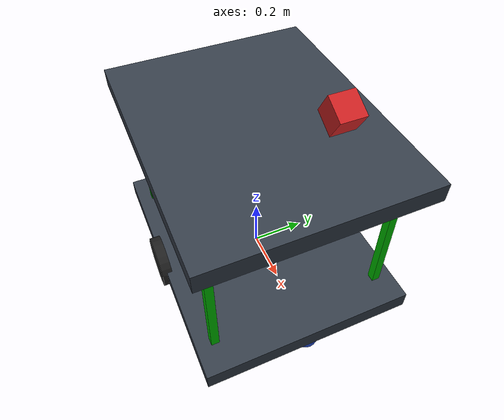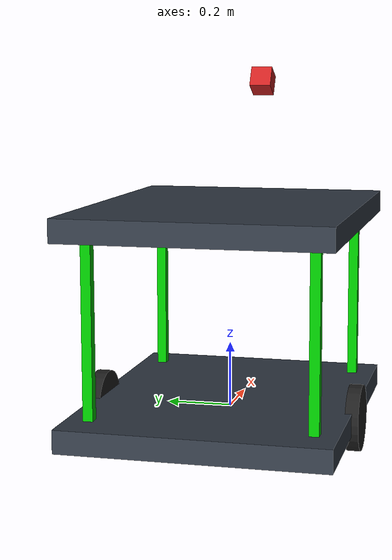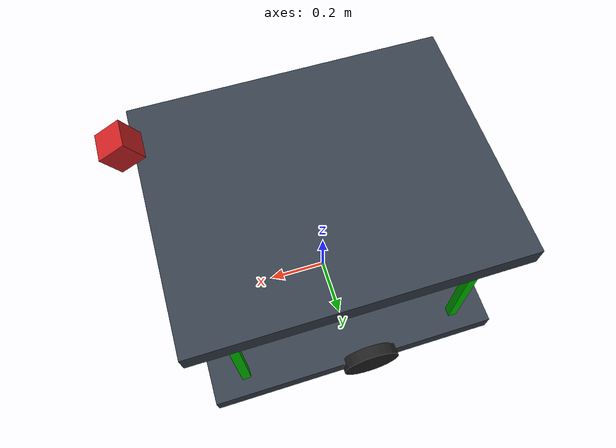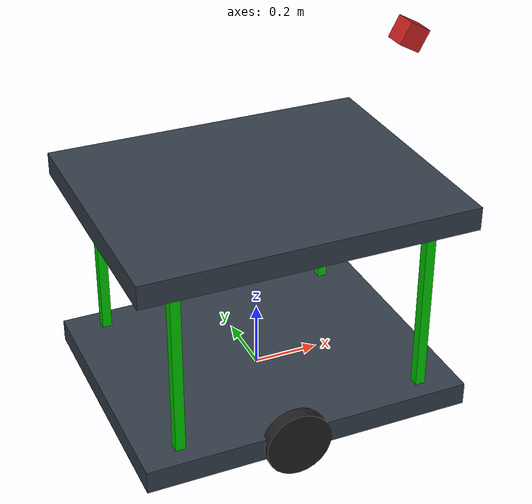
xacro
<?xml version="1.0" ?>

<robot name="m2wr" xmlns:xacro="https://www.ros.org/wiki/xacro" >

  <material name="black">
    <color rgba="0.0 0.0 0.0 1.0"/>
  </material>
  <material name="blue">
    <color rgba="0.203125 0.23828125 0.28515625 1.0"/>
  </material>
  <material name="green">
    <color rgba="0.0 0.8 0.0 1.0"/>
  </material>
  <material name="grey">
    <color rgba="0.2 0.2 0.2 1.0"/>
  </material>
  <material name="orange">
    <color rgba="1.0 0.423529411765 0.0392156862745 1.0"/>
  </material>
  <material name="brown">
    <color rgba="0.870588235294 0.811764705882 0.764705882353 1.0"/>
  </material>
  <material name="red">
    <color rgba="0.80078125 0.12890625 0.1328125 1.0"/>
  </material>
  <material name="white">
    <color rgba="1.0 1.0 1.0 1.0"/>
  </material>

  <gazebo reference="link_chassis">
    <material>Gazebo/Blue</material>
  </gazebo>
  <gazebo reference="link_left_wheel">
    <material>Gazebo/Black</material>
  </gazebo>
  <gazebo reference="link_right_wheel">
    <material>Gazebo/Black</material>
  </gazebo>
  <gazebo reference="link_layer2">
    <material>Gazebo/Blue</material>
  </gazebo>
  <gazebo reference="support_1">
    <material>Gazebo/Green</material>
  </gazebo>
  <gazebo reference="support_2">
    <material>Gazebo/Green</material>
  </gazebo>
    <gazebo reference="support_3">
    <material>Gazebo/Green</material>
  </gazebo>
    <gazebo reference="support_4">
    <material>Gazebo/Green</material>
  </gazebo>

<gazebo>
    <plugin filename="libgazebo_ros_diff_drive.so" name="differential_drive_controller">
      <alwaysOn>true</alwaysOn>
      <updateRate>20</updateRate>
      <leftJoint>joint_left_wheel</leftJoint>
      <rightJoint>joint_right_wheel</rightJoint>
      <wheelSeparation>0.8</wheelSeparation>
      <wheelDiameter>0.2</wheelDiameter>
      <torque>10</torque>
      <commandTopic>cmd_vel</commandTopic>
      <odometryTopic>odom</odometryTopic>
      <odometryFrame>odom</odometryFrame>
      <robotBaseFrame>link_chassis</robotBaseFrame>
    </plugin>
  </gazebo>

  <link name="link_chassis">
    <!-- pose and inertial -->

    <inertial>
      <mass value="5"/>
      <origin rpy="0 0 0" xyz="0.00 0.0 0.0"/>
      <inertia ixx="0.0395416666667" ixy="0" ixz="0" iyy="0.106208333333" iyz="0" izz="0.106208333333"/>
    </inertial>

    <collision name="collision_chassis">
      <geometry>
        <box size="1 0.8 0.07"/>
      </geometry>
    </collision>

    <visual>
      <origin rpy="0 0 0" xyz="0 0 0"/>
      <geometry>
        <box size="1 0.8 0.07"/>
      </geometry>
      <material name="blue"/>
    </visual>

    <!-- caster front -->
    <collision name="caster_front_collision">
      <origin rpy=" 0 0 0" xyz="0.35 0 -0.05"/>
      <geometry>
        <sphere radius="0.05"/>
      </geometry>
      <surface>
        <friction>
          <ode>
            <mu>0</mu>
            <mu2>0</mu2>
            <slip1>1.0</slip1>
            <slip2>1.0</slip2>
          </ode>
        </friction>
      </surface>
    </collision>
    <visual name="caster_front_visual">
      <origin rpy=" 0 0 0" xyz="0.45 0 -0.05"/>
      <geometry>
        <sphere radius="0.05"/>
      </geometry>
    </visual>
  </link>

  <!-- Create wheel right -->

  <link name="link_right_wheel">
    <inertial>
      <mass value="0.2"/>
      <origin rpy="0 0 0" xyz="0 0 0"/>
      <inertia ixx="0.00052666666" ixy="0" ixz="0" iyy="0.00052666666" iyz="0" izz="0.001"/>
    </inertial>

    <collision name="link_right_wheel_collision">
      <origin rpy="0 1.5707 1.5707" xyz="0 0 0" />
      <geometry>
        <cylinder length="0.04" radius="0.1"/>
      </geometry>
    </collision>

    <visual name="link_right_wheel_visual">
    <!--Origin tag is basically for the orientation and not the offset-->
    <!-- Offset is decided when we make the joint-->
      <origin rpy="0 1.5707 1.5707" xyz="0 0 0"/>
      <geometry>
        <cylinder length="0.04" radius="0.1"/>
      </geometry>
    </visual>

  </link>

  <!--   Joint for right wheel  -->
  <joint name="joint_right_wheel" type="continuous">
    <origin rpy="0 0 0" xyz="-0.05 0.4 0"/>
    <child link="link_right_wheel" />
    <parent link="link_chassis"/>
    <axis rpy="0 0 0" xyz="0 1 0"/>
    <limit effort="10000" velocity="1000"/>
    <joint_properties damping="1.0" friction="1.0" />
  </joint>

  <!-- Left Wheel link -->

  <link name="link_left_wheel">
    <inertial>
      <mass value="0.2"/>
      <origin rpy="0 0 0" xyz="0 0 0"/>
      <inertia ixx="0.00052666666" ixy="0" ixz="0" iyy="0.00052666666" iyz="0" izz="0.001"/>
    </inertial>

    <collision name="link_left_wheel_collision">
      <origin rpy="0 1.5707 1.5707" xyz="0 0 0" />
      <geometry>
        <cylinder length="0.04" radius="0.1"/>
      </geometry>
    </collision>

    <visual name="link_left_wheel_visual">
      <origin rpy="0 1.5707 1.5707" xyz="0 0 0"/>
      <geometry>
        <cylinder length="0.04" radius="0.1"/>
      </geometry>
    </visual>

  </link>

  <!--   Joint for left wheel  -->
  <joint name="joint_left_wheel" type="continuous">
    <origin rpy="0 0 0" xyz="-0.05 -0.4 0"/>
    <child link="link_left_wheel" />
    <parent link="link_chassis"/>
    <axis rpy="0 0 0" xyz="0 1 0"/>
    <limit effort="10000" velocity="1000"/>
    <joint_properties damping="1.0" friction="1.0" />
  </joint>

  <!--Level 2-->
  <link name="support_1">
    <visual>
      <origin rpy="0.0 1.5707 0.0" xyz="0.0 0.0 0.13"/>
      <geometry>
        <box size="0.6 0.03 0.03"/>
      </geometry>
      <material name="green"/>
    </visual>
  </link>

  <joint name="sup1" type="fixed">
    <origin xyz="0.38 0.33 0.2" rpy="0.0 0.0 0.0"/>
    <parent link="link_chassis"/>
    <child link="support_1"/>
    <axis xyz="0.0 0.0 0.0"/>
  </joint>

  <link name="support_2">
    <visual>
      <origin rpy="0.0 1.5707 0.0" xyz="0.0 0.0 0.13"/>
      <geometry>
        <box size="0.6 0.03 0.03"/>
      </geometry>
      <material name="green"/>
    </visual>
  </link>

  <joint name="sup2" type="fixed">
    <origin xyz="0.38 -0.33 0.2" rpy="0.0 0.0 0.0"/>
    <parent link="link_chassis"/>
    <child link="support_2"/>
    <axis xyz="0.0 0.0 0.0"/>
  </joint>

  <link name="support_3">
    <visual>
      <origin rpy="0.0 1.5707 0.0" xyz="0.0 0.0 0.13"/>
      <geometry>
        <box size="0.6 0.03 0.03"/>
      </geometry>
      <material name="green"/>
    </visual>
  </link>

  <joint name="sup3" type="fixed">
    <origin xyz="-0.38 0.33 0.2" rpy="0.0 0.0 0.0"/>
    <parent link="link_chassis"/>
    <child link="support_3"/>
    <axis xyz="0.0 0.0 0.0"/>
  </joint>

  <link name="support_4">
    <visual>
      <origin rpy="0.0 1.5707 0.0" xyz="0.0 0.0 0.13"/>
      <geometry>
        <box size="0.6 0.03 0.03"/>
      </geometry>
      <material name="green"/>
    </visual>
  </link>

  <joint name="sup4" type="fixed">
    <origin xyz="-0.38 -0.33 0.2" rpy="0.0 0.0 0.0"/>
    <parent link="link_chassis"/>
    <child link="support_4"/>
    <axis xyz="0.0 0.0 0.0"/>
  </joint>

  <link name="link_layer2">
    <visual>
      <origin rpy="0 0 0" xyz="0 0 0"/>
      <geometry>
        <box size="1 0.8 0.07"/>
      </geometry>
      <material name="blue"/>
    </visual>
  </link>

  <joint name="lay2" type="fixed">
    <origin xyz="0.0 0.0 0.6" rpy="0.0 0.0 0.0"/>
    <parent link="link_chassis"/>
    <child link="link_layer2"/>
    <axis xyz="0.0 0.0 0.0"/>
  </joint>

  <link name="link_camera">
    <visual name="">
      <origin xyz="0.0 0.0 0.0" rpy="0.0 0.0 0.0"/>
      <geometry>
        <box size="0.07 0.07 0.07"/>
      </geometry>
      <material name="red"/>
    </visual>
  </link>

  <joint name="lay2_camera" type="fixed">
    <origin xyz="0.47 0.0 0.4" rpy="0.0 0.5 0.0"/>
    <parent link="link_layer2"/>
    <child link="link_camera"/>
    <axis xyz="0.0 0.0 0.0"/>
  </joint>

  <!-- camera -->
  <gazebo reference="link_camera">
    <sensor type="camera" name="camera1">
      <update_rate>30.0</update_rate>
      <camera name="head">
        <horizontal_fov>1.3962634</horizontal_fov>
        <image>
          <width>1200</width>
          <height>800</height>
          <format>R8G8B8</format>
        </image>
        <clip>
          <near>0.02</near>
          <far>300</far>
        </clip>
        <noise>
          <type>gaussian</type>
          <!-- Noise is sampled independently per pixel on each frame.
               That pixel's noise value is added to each of its color
               channels, which at that point lie in the range [0,1]. -->
          <mean>0.0</mean>
          <stddev>0.007</stddev>
        </noise>
      </camera>
      <plugin name="camera_controller" filename="libgazebo_ros_camera.so">
        <alwaysOn>true</alwaysOn>
        <updateRate>0.0</updateRate>
        <cameraName>botcam/camera1</cameraName>
        <imageTopicName>image_raw</imageTopicName>
        <cameraInfoTopicName>camera_info</cameraInfoTopicName>
        <frameName>link_camera</frameName>
        <hackBaseline>0.07</hackBaseline>
        <distortionK1>0.0</distortionK1>
        <distortionK2>0.0</distortionK2>
        <distortionK3>0.0</distortionK3>
        <distortionT1>0.0</distortionT1>
        <distortionT2>0.0</distortionT2>
      </plugin>
    </sensor>
  </gazebo>

</robot>
